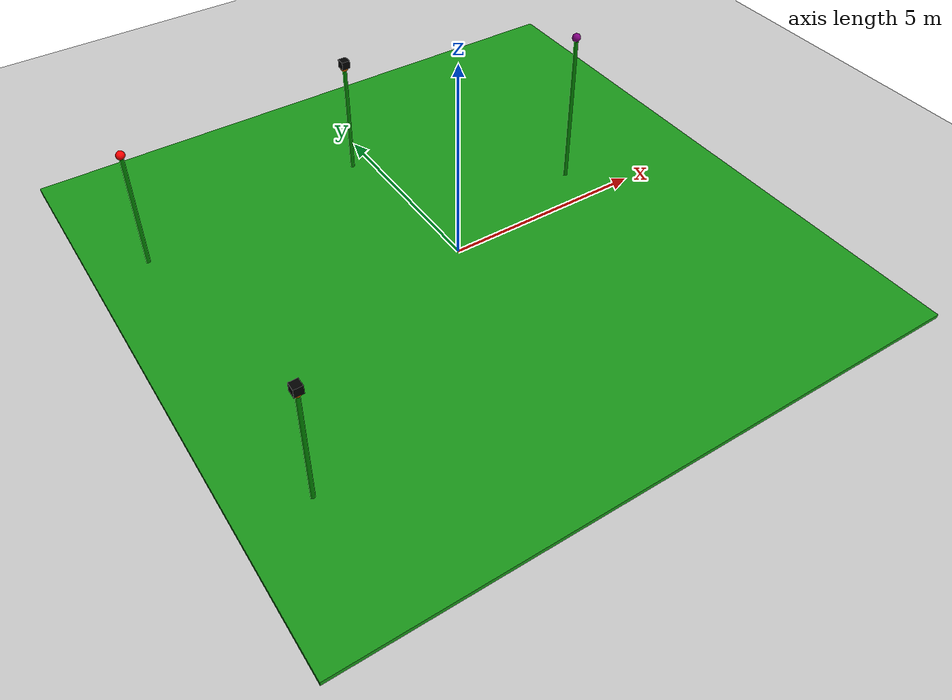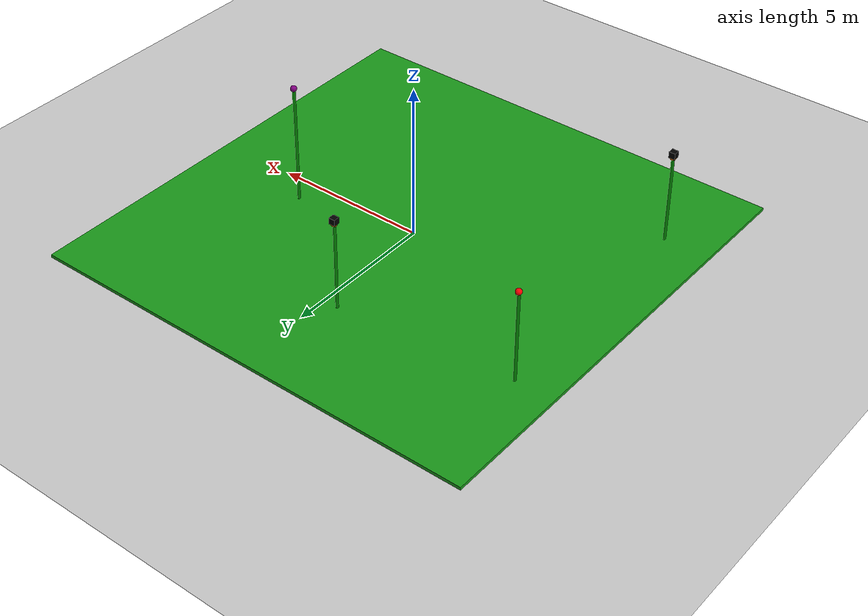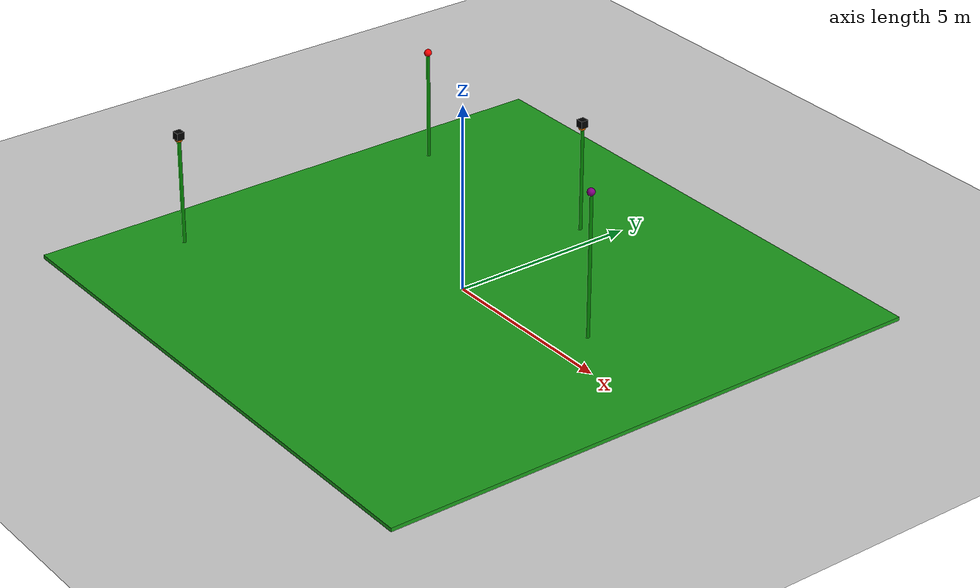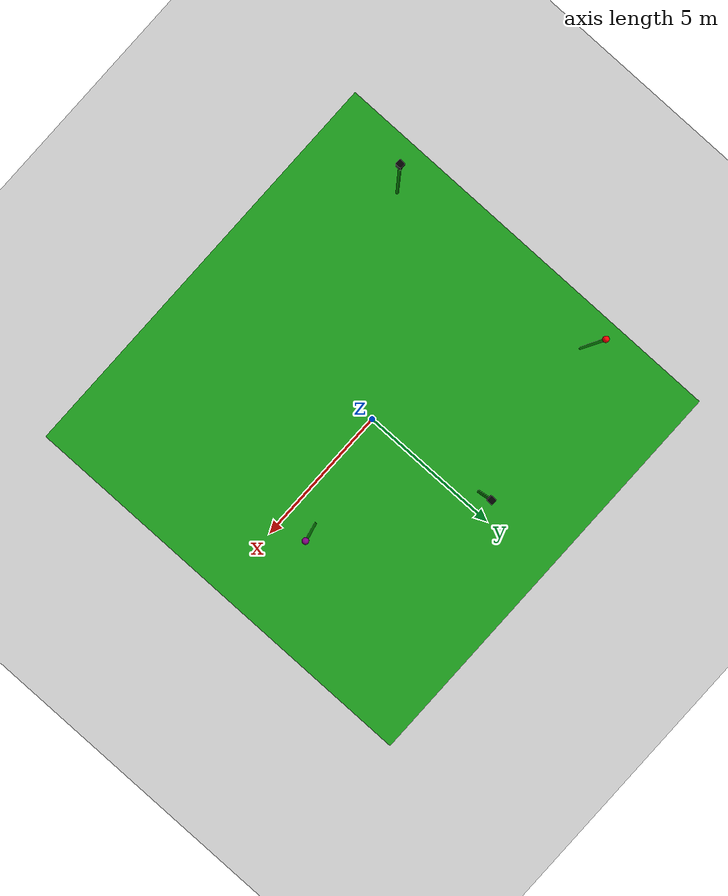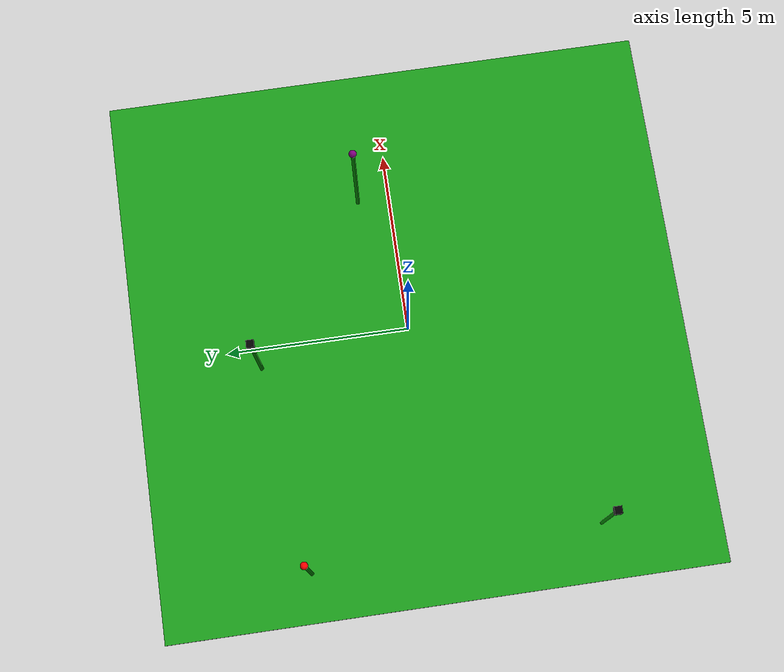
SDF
<?xml version="1.0" ?>
<sdf version="1.6">
  <world name="farm_world">

    <!-- Physics -->
    <physics name="default_physics" type="ode">
      <max_step_size>0.001</max_step_size>
      <real_time_factor>1</real_time_factor>
      <real_time_update_rate>1000</real_time_update_rate>
    </physics>

    <!-- Gravity -->
    <gravity>0 0 -9.8</gravity>

    <!-- Atmosphere -->
    <atmosphere type="adiabatic"/>

    <!-- Scene -->
    <scene>
      <ambient>0.4 0.4 0.4 1</ambient>
      <background>0.7 0.7 0.7 1</background>
      <shadows>true</shadows>
    </scene>

    <!-- Ground Plane -->
    <model name='ground_plane'>
      <static>true</static>
      <link name='link'>
        <collision name='collision'>
          <geometry>
            <plane>
              <normal>0 0 1</normal>
              <size>100 100</size>
            </plane>
          </geometry>
          <surface>
            <friction><ode/></friction>
          </surface>
        </collision>
        <visual name='visual'>
          <geometry>
            <plane>
              <normal>0 0 1</normal>
              <size>100 100</size>
            </plane>
          </geometry>
          <material>
            <ambient>0.8 0.8 0.8 1</ambient>
            <diffuse>0.8 0.8 0.8 1</diffuse>
            <specular>0.8 0.8 0.8 1</specular>
          </material>
        </visual>
      </link>
    </model>

    <!-- Grass Patch -->
    <model name="grass_patch">
      <static>true</static>
      <link name="link">
        <visual name="grass_visual">
          <geometry>
            <box>
              <size>15 15 0.1</size>
            </box>
          </geometry>
          <material>
            <ambient>0.1 0.6 0.1 1</ambient>
            <diffuse>0.1 0.6 0.1 1</diffuse>
          </material>
          <pose>0 0 0.05 0 0 0</pose>
        </visual>
        <collision name="grass_collision">
          <geometry>
            <box>
              <size>15 15 0.1</size>
            </box>
          </geometry>
        </collision>
      </link>
    </model>

    <!-- 30 Random Flowers -->

    <model name="flower1">
      <static>true</static>
      <link name="link">
        <visual name="stem_visual">
          <geometry><cylinder><radius>0.05</radius><length>3.1</length></cylinder></geometry>
          <material><ambient>0 0.5 0 1</ambient><diffuse>0 0.5 0 1</diffuse></material>
          <pose>0 0 1.55 0 0 0</pose>
        </visual>
        <visual name="top_visual">
          <geometry><sphere><radius>0.1</radius></sphere></geometry>
          <material><ambient>1 0 0 1</ambient><diffuse>1 0 0 1</diffuse></material>
          <pose>0 0 3.1 0 0 0</pose>
        </visual>
        <collision name="stem_collision">
          <geometry><cylinder><radius>0.05</radius><length>3.1</length></cylinder></geometry>
          <pose>0 0 1.55 0 0 0</pose>
        </collision>
        <collision name="top_collision">
          <geometry><sphere><radius>0.1</radius></sphere></geometry>
          <pose>0 0 3.1 0 0 0</pose>
        </collision>
      </link>
      <pose>-6.21 3.47 0 0 0 0</pose>
    </model>

    <model name="flower14">
    <static>true</static>
    <link name="link">
        <!-- Stem -->
        <visual name="stem_visual">
        <geometry><cylinder><radius>0.05</radius><length>3.0</length></cylinder></geometry>
        <material><ambient>0 0.5 0 1</ambient><diffuse>0 0.5 0 1</diffuse></material>
        <pose>0 0 1.5 0 0 0</pose>
        </visual>
        <!-- Top -->
        <visual name="top_visual">
        <geometry><sphere><radius>0.1</radius></sphere></geometry>
        <material><ambient>1 0.5 0 1</ambient><diffuse>1 0.5 0 1</diffuse></material>
        <pose>0 0 3.0 0 0 0</pose>
        </visual>
        <!-- Collisions -->
        <collision name="stem_collision">
        <geometry><cylinder><radius>0.05</radius><length>3.0</length></cylinder></geometry>
        <pose>0 0 1.5 0 0 0</pose>
        </collision>
        <collision name="top_collision">
        <geometry><sphere><radius>0.1</radius></sphere></geometry>
        <pose>0 0 3.0 0 0 0</pose>
        </collision>

        <!-- Bee visual attached to the flower -->
        <visual name="bee_visual">
        <geometry>
            <box><size>0.2 0.2 0.2</size></box>
        </geometry>
        <material>
            <ambient>0 0 0 1</ambient>
            <diffuse>0 0 0 1</diffuse>
        </material>
        <!-- position relative to flower link -->
        <pose>0 0 3.1 0 0 0</pose>
        </visual>
        <collision name="bee_collision">
        <geometry>
            <box><size>0.2 0.2 0.2</size></box>
        </geometry>
        <pose>0 0 3.1 0 0 0</pose>
        </collision>

    </link>
    <!-- World pose -->
    <pose>-5.98816 -4.31248 0 0 0 0</pose>
    </model>

    <!-- Flower 15 -->
    <model name="flower15">
      <static>true</static>
      <link name="link">
        <!-- Stem -->
        <visual name="stem_visual">
          <geometry><cylinder><radius>0.05</radius><length>4.0</length></cylinder></geometry>
          <material><ambient>0 0.5 0 1</ambient><diffuse>0 0.5 0 1</diffuse></material>
          <pose>0 0 2.0 0 0 0</pose>
        </visual>
        <collision name="stem_collision">
          <geometry><cylinder><radius>0.05</radius><length>4.0</length></cylinder></geometry>
          <pose>0 0 2.0 0 0 0</pose>
        </collision>

        <!-- Top -->
        <visual name="top_visual">
          <geometry><sphere><radius>0.1</radius></sphere></geometry>
          <material><ambient>0.5 0 0.5 1</ambient><diffuse>0.5 0 0.5 1</diffuse></material>
          <pose>0 0 4.0 0 0 0</pose>
        </visual>
        <collision name="top_collision">
          <geometry><sphere><radius>0.1</radius></sphere></geometry>
          <pose>0 0 4.0 0 0 0</pose>
        </collision>
      </link>
      <pose>3.77 0.88 0 0 0 0</pose>
    </model>

    <!-- Flower 16 -->
    <model name="flower16">
      <static>true</static>
      <link name="link">
        <!-- Stem -->
        <visual name="stem_visual">
          <geometry><cylinder><radius>0.05</radius><length>3.0</length></cylinder></geometry>
          <material><ambient>0 0.5 0 1</ambient><diffuse>0 0.5 0 1</diffuse></material>
          <pose>0 0 1.5 0 0 0</pose>
        </visual>
        <!-- Top -->
        <visual name="top_visual">
          <geometry><sphere><radius>0.1</radius></sphere></geometry>
          <material><ambient>1 0.5 0 1</ambient><diffuse>1 0.5 0 1</diffuse></material>
          <pose>0 0 3.0 0 0 0</pose>
        </visual>
        <!-- Collisions -->
        <collision name="stem_collision">
          <geometry><cylinder><radius>0.05</radius><length>3.0</length></cylinder></geometry>
          <pose>0 0 1.5 0 0 0</pose>
        </collision>
        <collision name="top_collision">
          <geometry><sphere><radius>0.1</radius></sphere></geometry>
          <pose>0 0 3.0 0 0 0</pose>
        </collision>
        <!-- Bee visual attached to the flower -->
        <visual name="bee_visual">
        <geometry>
            <box><size>0.2 0.2 0.2</size></box>
        </geometry>
        <material>
            <ambient>0 0 0 1</ambient>
            <diffuse>0 0 0 1</diffuse>
        </material>
        <!-- position relative to flower link -->
        <pose>0 0 3.1 0 0 0</pose>
        </visual>
        <collision name="bee_collision">
        <geometry>
            <box><size>0.2 0.2 0.2</size></box>
        </geometry>
        <pose>0 0 3.1 0 0 0</pose>
        </collision>
      </link>
      <!-- World pose -->
      <pose>-0.55 4.11 0 0 0 0</pose>
    </model>

    <!-- Directional Light -->
    <light name='sun' type='directional'>
      <pose>0 0 10 0 0 0</pose>
      <cast_shadows>true</cast_shadows>
      <intensity>1</intensity>
      <direction>-0.5 0.1 -0.9</direction>
      <diffuse>0.8 0.8 0.8 1</diffuse>
      <specular>0.2 0.2 0.2 1</specular>
      <attenuation>
        <range>1000</range>
        <linear>0.01</linear>
        <constant>0.9</constant>
        <quadratic>0.001</quadratic>
      </attenuation>
    </light>

  </world>
</sdf>
